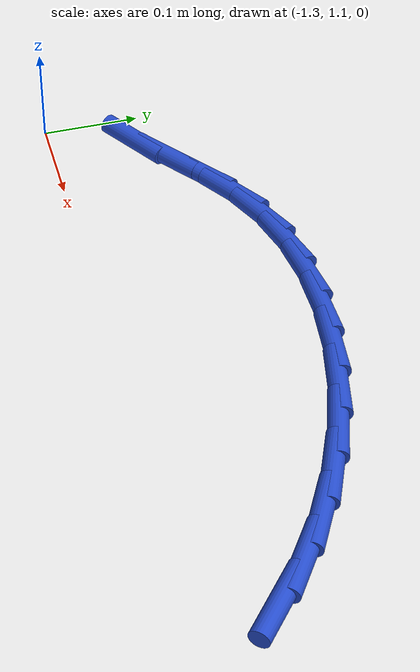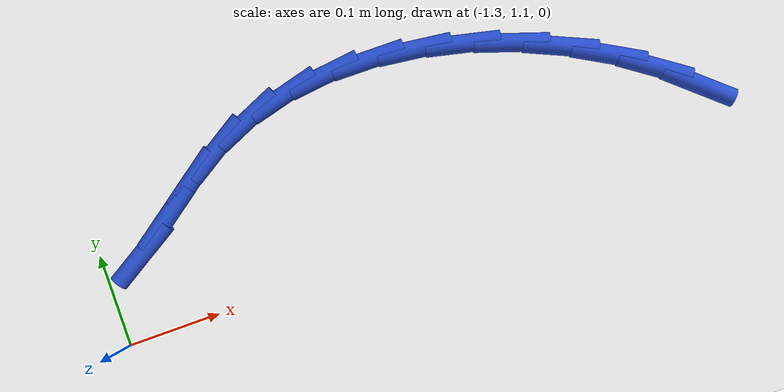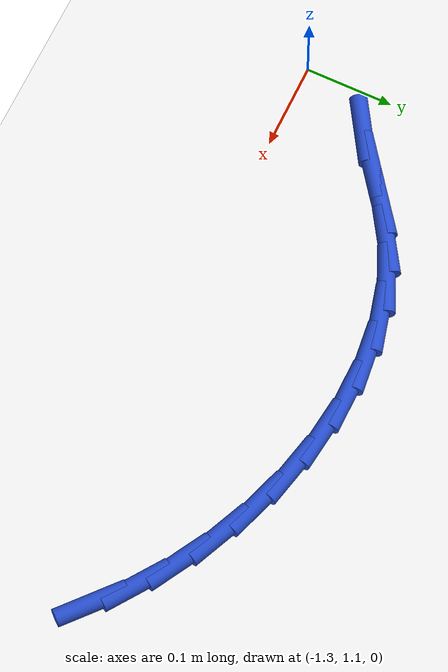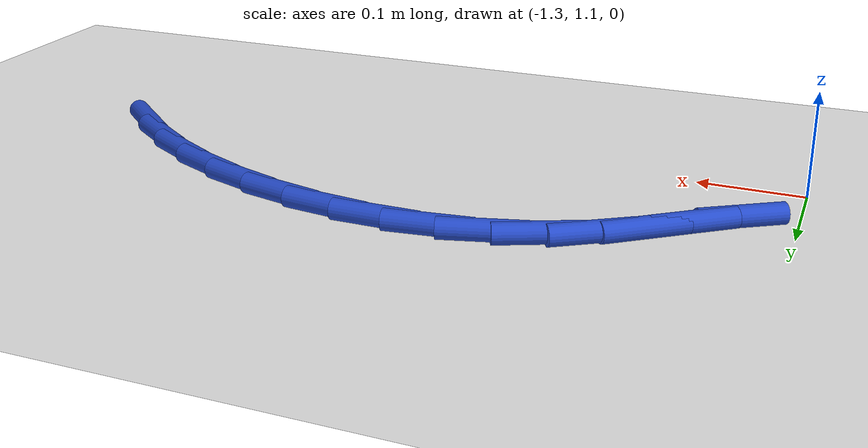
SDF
<sdf version="1.6">
 <world name="default">
  <model name="ground_plane">
   <static>1</static>
   <link name="link">
    <collision name="collision">
     <geometry><plane><normal>0 0 1</normal><size>100 100</size></plane></geometry>
     <surface><friction><ode><mu>100</mu><mu2>50</mu2></ode></friction></surface>
    </collision>
    <visual name="visual">
     <cast_shadows>0</cast_shadows>
     <geometry><plane><normal>0 0 1</normal><size>100 100</size></plane></geometry>
     <material>
      <script><uri>file://media/materials/scripts/gazebo.material</uri><name>Gazebo/WhiteGlow</name></script>
     </material>
    </visual>
   </link>
  </model>
  <model name="line">
   <link name="link_31">
    <pose>-0.6410760281235778 1.1611682343596013 0.01 0 1.57 -0.7153614754656391</pose>
    <collision name="collision">
     <geometry><cylinder><radius>0.01</radius><length>0.08</length></cylinder></geometry>
    </collision>
    <visual name="visual">
     <material>
      <script><name>Gazebo/Blue</name><uri>file://media/materials/scripts/gazebo.material</uri></script>
     </material>
     <geometry><cylinder><radius>0.01</radius><length>0.08</length></cylinder></geometry>
    </visual>
   </link>
   <link name="link_32">
    <pose>-0.6784510046626457 1.1936431419060827 0.01 0 1.57 -0.6067603509886731</pose>
    <collision name="collision">
     <geometry><cylinder><radius>0.01</radius><length>0.08</length></cylinder></geometry>
    </collision>
    <visual name="visual">
     <material>
      <script><name>Gazebo/Blue</name><uri>file://media/materials/scripts/gazebo.material</uri></script>
     </material>
     <geometry><cylinder><radius>0.01</radius><length>0.08</length></cylinder></geometry>
    </visual>
   </link>
   <link name="link_33">
    <pose>-0.7200114812140637 1.222490582966407 0.01 0 1.57 -0.5062409014885254</pose>
    <collision name="collision">
     <geometry><cylinder><radius>0.01</radius><length>0.08</length></cylinder></geometry>
    </collision>
    <visual name="visual">
     <material>
      <script><name>Gazebo/Blue</name><uri>file://media/materials/scripts/gazebo.material</uri></script>
     </material>
     <geometry><cylinder><radius>0.01</radius><length>0.08</length></cylinder></geometry>
    </visual>
   </link>
   <link name="link_34">
    <pose>-0.7649137405841424 1.2473859130142229 0.01 0 1.57 -0.41030009966259573</pose>
    <collision name="collision">
     <geometry><cylinder><radius>0.01</radius><length>0.08</length></cylinder></geometry>
    </collision>
    <visual name="visual">
     <material>
      <script><name>Gazebo/Blue</name><uri>file://media/materials/scripts/gazebo.material</uri></script>
     </material>
     <geometry><cylinder><radius>0.01</radius><length>0.08</length></cylinder></geometry>
    </visual>
   </link>
   <link name="link_35">
    <pose>-0.8123140655791941 1.2680044875231808 0.01 0 1.57 -0.3156031704391992</pose>
    <collision name="collision">
     <geometry><cylinder><radius>0.01</radius><length>0.08</length></cylinder></geometry>
    </collision>
    <visual name="visual">
     <material>
      <script><name>Gazebo/Blue</name><uri>file://media/materials/scripts/gazebo.material</uri></script>
     </material>
     <geometry><cylinder><radius>0.01</radius><length>0.08</length></cylinder></geometry>
    </visual>
   </link>
   <link name="link_36">
    <pose>-0.86136873900553 1.2840216619669313 0.01 0 1.57 -0.21885910520567317</pose>
    <collision name="collision">
     <geometry><cylinder><radius>0.01</radius><length>0.08</length></cylinder></geometry>
    </collision>
    <visual name="visual">
     <material>
      <script><name>Gazebo/Blue</name><uri>file://media/materials/scripts/gazebo.material</uri></script>
     </material>
     <geometry><cylinder><radius>0.01</radius><length>0.08</length></cylinder></geometry>
    </visual>
   </link>
   <link name="link_37">
    <pose>-0.9112340436694611 1.2951127918191232 0.01 0 1.57 -0.11666983870270584</pose>
    <collision name="collision">
     <geometry><cylinder><radius>0.01</radius><length>0.08</length></cylinder></geometry>
    </collision>
    <visual name="visual">
     <material>
      <script><name>Gazebo/Blue</name><uri>file://media/materials/scripts/gazebo.material</uri></script>
     </material>
     <geometry><cylinder><radius>0.01</radius><length>0.08</length></cylinder></geometry>
    </visual>
   </link>
   <link name="link_38">
    <pose>-0.9610662623772994 1.3009532325534081 0.01 0 1.57 -0.005415223129232277</pose>
    <collision name="collision">
     <geometry><cylinder><radius>0.01</radius><length>0.08</length></cylinder></geometry>
    </collision>
    <visual name="visual">
     <material>
      <script><name>Gazebo/Blue</name><uri>file://media/materials/scripts/gazebo.material</uri></script>
     </material>
     <geometry><cylinder><radius>0.01</radius><length>0.08</length></cylinder></geometry>
    </visual>
   </link>
   <link name="link_39">
    <pose>-1.0100216779353564 1.3012183396434345 0.01 0 1.57 0.11873354741328766</pose>
    <collision name="collision">
     <geometry><cylinder><radius>0.01</radius><length>0.08</length></cylinder></geometry>
    </collision>
    <visual name="visual">
     <material>
      <script><name>Gazebo/Blue</name><uri>file://media/materials/scripts/gazebo.material</uri></script>
     </material>
     <geometry><cylinder><radius>0.01</radius><length>0.08</length></cylinder></geometry>
    </visual>
   </link>
   <link name="link_40">
    <pose>-1.0572565731499435 1.2955834685628531 0.01 0 1.57 0.2595010313212118</pose>
    <collision name="collision">
     <geometry><cylinder><radius>0.01</radius><length>0.08</length></cylinder></geometry>
    </collision>
    <visual name="visual">
     <material>
      <script><name>Gazebo/Blue</name><uri>file://media/materials/scripts/gazebo.material</uri></script>
     </material>
     <geometry><cylinder><radius>0.01</radius><length>0.08</length></cylinder></geometry>
    </visual>
   </link>
   <link name="link_41">
    <pose>-1.1019272308273713 1.2837239747853137 0.01 0 1.57 0.41932412700191124</pose>
    <collision name="collision">
     <geometry><cylinder><radius>0.01</radius><length>0.08</length></cylinder></geometry>
    </collision>
    <visual name="visual">
     <material>
      <script><name>Gazebo/Blue</name><uri>file://media/materials/scripts/gazebo.material</uri></script>
     </material>
     <geometry><cylinder><radius>0.01</radius><length>0.08</length></cylinder></geometry>
    </visual>
   </link>
   <link name="link_42">
    <pose>-1.1431986052651588 1.2653267589906823 0.01 0 1.57 0.5669193455313425</pose>
    <collision name="collision">
     <geometry><cylinder><radius>0.01</radius><length>0.08</length></cylinder></geometry>
    </collision>
    <visual name="visual">
     <material>
      <script><name>Gazebo/Blue</name><uri>file://media/materials/scripts/gazebo.material</uri></script>
     </material>
     <geometry><cylinder><radius>0.01</radius><length>0.08</length></cylinder></geometry>
    </visual>
   </link>
   <link name="link_43">
    <pose>-1.1810837651608472 1.241207899691082 0.01 0 1.57 0.6420238794136489</pose>
    <collision name="collision">
     <geometry><cylinder><radius>0.01</radius><length>0.08</length></cylinder></geometry>
    </collision>
    <visual name="visual">
     <material>
      <script><name>Gazebo/Blue</name><uri>file://media/materials/scripts/gazebo.material</uri></script>
     </material>
     <geometry><cylinder><radius>0.01</radius><length>0.08</length></cylinder></geometry>
    </visual>
   </link>
   <link name="link_44">
    <pose>-1.2171445248463673 1.2142454722685305 0.01 0 1.57 0.6387863320301767</pose>
    <collision name="collision">
     <geometry><cylinder><radius>0.01</radius><length>0.08</length></cylinder></geometry>
    </collision>
    <visual name="visual">
     <material>
      <script><name>Gazebo/Blue</name><uri>file://media/materials/scripts/gazebo.material</uri></script>
     </material>
     <geometry><cylinder><radius>0.01</radius><length>0.08</length></cylinder></geometry>
    </visual>
   </link>
   <link name="link_45">
    <pose>-1.2531076323361956 1.1875371444832854 0.01 0 1.57 0.5559442815740465</pose>
    <collision name="collision">
     <geometry><cylinder><radius>0.01</radius><length>0.08</length></cylinder></geometry>
    </collision>
    <visual name="visual">
     <material>
      <script><name>Gazebo/Blue</name><uri>file://media/materials/scripts/gazebo.material</uri></script>
     </material>
     <geometry><cylinder><radius>0.01</radius><length>0.08</length></cylinder></geometry>
    </visual>
   </link>
  </model>
 </world>
</sdf>
